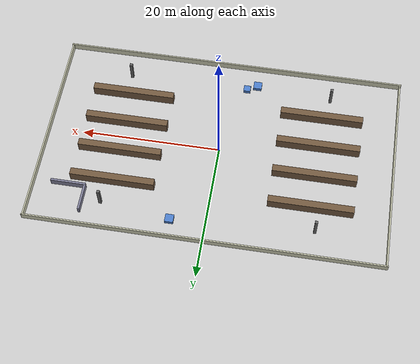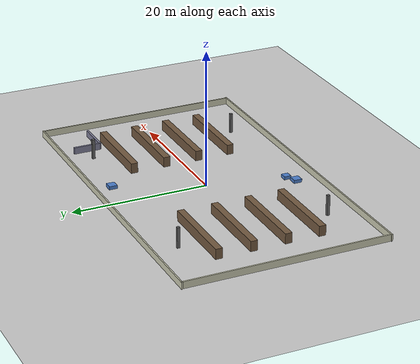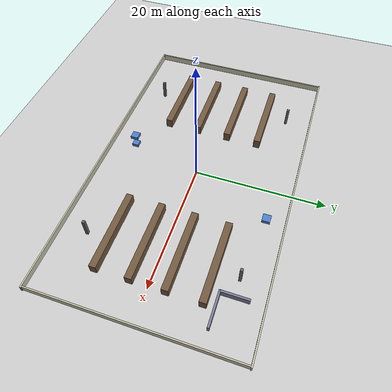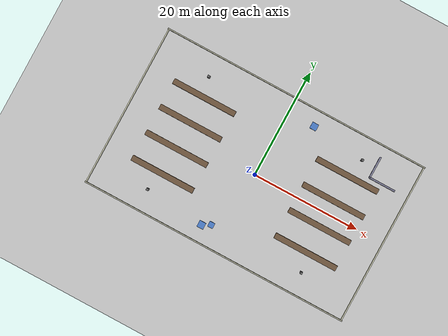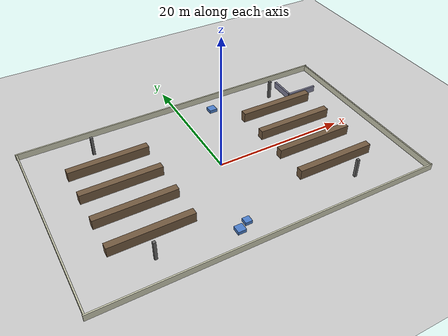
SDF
<?xml version="1.0"?>
<sdf version="1.6">
  <world name="warehouse">

    <include><uri>model://sun</uri></include>
    <include><uri>model://ground_plane</uri></include>

    <physics name="default_physics" type="ode">
      <max_step_size>0.005</max_step_size>
      <real_time_factor>1.0</real_time_factor>
    </physics>

    <!-- ═══════════ Outer shell 50m × 30m ═══════════ -->
    <model name="wall_n">
      <pose>0 15.0 0.5 0 0 0</pose>
      <static>true</static>
      <link name="link">
        <collision name="collision"><geometry><box><size>50.4 0.2 1.0</size></box></geometry></collision>
        <visual name="visual"><geometry><box><size>50.4 0.2 1.0</size></box></geometry>
          <material><ambient>0.8 0.8 0.7 1</ambient><diffuse>0.8 0.8 0.7 1</diffuse></material>
        </visual>
      </link>
    </model>
    <model name="wall_s">
      <pose>0 -15.0 0.5 0 0 0</pose>
      <static>true</static>
      <link name="link">
        <collision name="collision"><geometry><box><size>50.4 0.2 1.0</size></box></geometry></collision>
        <visual name="visual"><geometry><box><size>50.4 0.2 1.0</size></box></geometry>
          <material><ambient>0.8 0.8 0.7 1</ambient><diffuse>0.8 0.8 0.7 1</diffuse></material>
        </visual>
      </link>
    </model>
    <model name="wall_e">
      <pose>25.0 0 0.5 0 0 0</pose>
      <static>true</static>
      <link name="link">
        <collision name="collision"><geometry><box><size>0.2 30.0 1.0</size></box></geometry></collision>
        <visual name="visual"><geometry><box><size>0.2 30.0 1.0</size></box></geometry>
          <material><ambient>0.8 0.8 0.7 1</ambient><diffuse>0.8 0.8 0.7 1</diffuse></material>
        </visual>
      </link>
    </model>
    <model name="wall_w">
      <pose>-25.0 0 0.5 0 0 0</pose>
      <static>true</static>
      <link name="link">
        <collision name="collision"><geometry><box><size>0.2 30.0 1.0</size></box></geometry></collision>
        <visual name="visual"><geometry><box><size>0.2 30.0 1.0</size></box></geometry>
          <material><ambient>0.8 0.8 0.7 1</ambient><diffuse>0.8 0.8 0.7 1</diffuse></material>
        </visual>
      </link>
    </model>

    <!-- ═══════════ Shelving rows (identical, symmetric → landmark aliasing) ═══════════ -->
    <!-- 4 rows × 2 segments; each segment 12m × 1m × 1.5m -->
    <model name="shelf_a1">
      <pose>-14.0 -7.5 0.75 0 0 0</pose>
      <static>true</static>
      <link name="link">
        <collision name="collision"><geometry><box><size>12.0 1.0 1.5</size></box></geometry></collision>
        <visual name="visual"><geometry><box><size>12.0 1.0 1.5</size></box></geometry>
          <material><ambient>0.45 0.35 0.25 1</ambient><diffuse>0.45 0.35 0.25 1</diffuse></material>
        </visual>
      </link>
    </model>
    <model name="shelf_a2">
      <pose>14.0 -7.5 0.75 0 0 0</pose>
      <static>true</static>
      <link name="link">
        <collision name="collision"><geometry><box><size>12.0 1.0 1.5</size></box></geometry></collision>
        <visual name="visual"><geometry><box><size>12.0 1.0 1.5</size></box></geometry>
          <material><ambient>0.45 0.35 0.25 1</ambient><diffuse>0.45 0.35 0.25 1</diffuse></material>
        </visual>
      </link>
    </model>
    <model name="shelf_b1">
      <pose>-14.0 -2.5 0.75 0 0 0</pose>
      <static>true</static>
      <link name="link">
        <collision name="collision"><geometry><box><size>12.0 1.0 1.5</size></box></geometry></collision>
        <visual name="visual"><geometry><box><size>12.0 1.0 1.5</size></box></geometry>
          <material><ambient>0.45 0.35 0.25 1</ambient><diffuse>0.45 0.35 0.25 1</diffuse></material>
        </visual>
      </link>
    </model>
    <model name="shelf_b2">
      <pose>14.0 -2.5 0.75 0 0 0</pose>
      <static>true</static>
      <link name="link">
        <collision name="collision"><geometry><box><size>12.0 1.0 1.5</size></box></geometry></collision>
        <visual name="visual"><geometry><box><size>12.0 1.0 1.5</size></box></geometry>
          <material><ambient>0.45 0.35 0.25 1</ambient><diffuse>0.45 0.35 0.25 1</diffuse></material>
        </visual>
      </link>
    </model>
    <model name="shelf_c1">
      <pose>-14.0 2.5 0.75 0 0 0</pose>
      <static>true</static>
      <link name="link">
        <collision name="collision"><geometry><box><size>12.0 1.0 1.5</size></box></geometry></collision>
        <visual name="visual"><geometry><box><size>12.0 1.0 1.5</size></box></geometry>
          <material><ambient>0.45 0.35 0.25 1</ambient><diffuse>0.45 0.35 0.25 1</diffuse></material>
        </visual>
      </link>
    </model>
    <model name="shelf_c2">
      <pose>14.0 2.5 0.75 0 0 0</pose>
      <static>true</static>
      <link name="link">
        <collision name="collision"><geometry><box><size>12.0 1.0 1.5</size></box></geometry></collision>
        <visual name="visual"><geometry><box><size>12.0 1.0 1.5</size></box></geometry>
          <material><ambient>0.45 0.35 0.25 1</ambient><diffuse>0.45 0.35 0.25 1</diffuse></material>
        </visual>
      </link>
    </model>
    <model name="shelf_d1">
      <pose>-14.0 7.5 0.75 0 0 0</pose>
      <static>true</static>
      <link name="link">
        <collision name="collision"><geometry><box><size>12.0 1.0 1.5</size></box></geometry></collision>
        <visual name="visual"><geometry><box><size>12.0 1.0 1.5</size></box></geometry>
          <material><ambient>0.45 0.35 0.25 1</ambient><diffuse>0.45 0.35 0.25 1</diffuse></material>
        </visual>
      </link>
    </model>
    <model name="shelf_d2">
      <pose>14.0 7.5 0.75 0 0 0</pose>
      <static>true</static>
      <link name="link">
        <collision name="collision"><geometry><box><size>12.0 1.0 1.5</size></box></geometry></collision>
        <visual name="visual"><geometry><box><size>12.0 1.0 1.5</size></box></geometry>
          <material><ambient>0.45 0.35 0.25 1</ambient><diffuse>0.45 0.35 0.25 1</diffuse></material>
        </visual>
      </link>
    </model>

    <!-- ═══════════ Structural pillars (tall, sparse) ═══════════ -->
    <model name="pillar_1">
      <pose>-15.0 -11.0 1.5 0 0 0</pose>
      <static>true</static>
      <link name="link">
        <collision name="collision"><geometry><box><size>0.4 0.4 3.0</size></box></geometry></collision>
        <visual name="visual"><geometry><box><size>0.4 0.4 3.0</size></box></geometry>
          <material><ambient>0.4 0.4 0.4 1</ambient><diffuse>0.4 0.4 0.4 1</diffuse></material>
        </visual>
      </link>
    </model>
    <model name="pillar_2">
      <pose>15.0 -11.0 1.5 0 0 0</pose>
      <static>true</static>
      <link name="link">
        <collision name="collision"><geometry><box><size>0.4 0.4 3.0</size></box></geometry></collision>
        <visual name="visual"><geometry><box><size>0.4 0.4 3.0</size></box></geometry>
          <material><ambient>0.4 0.4 0.4 1</ambient><diffuse>0.4 0.4 0.4 1</diffuse></material>
        </visual>
      </link>
    </model>
    <model name="pillar_3">
      <pose>-15.0 11.0 1.5 0 0 0</pose>
      <static>true</static>
      <link name="link">
        <collision name="collision"><geometry><box><size>0.4 0.4 3.0</size></box></geometry></collision>
        <visual name="visual"><geometry><box><size>0.4 0.4 3.0</size></box></geometry>
          <material><ambient>0.4 0.4 0.4 1</ambient><diffuse>0.4 0.4 0.4 1</diffuse></material>
        </visual>
      </link>
    </model>
    <model name="pillar_4">
      <pose>15.0 11.0 1.5 0 0 0</pose>
      <static>true</static>
      <link name="link">
        <collision name="collision"><geometry><box><size>0.4 0.4 3.0</size></box></geometry></collision>
        <visual name="visual"><geometry><box><size>0.4 0.4 3.0</size></box></geometry>
          <material><ambient>0.4 0.4 0.4 1</ambient><diffuse>0.4 0.4 0.4 1</diffuse></material>
        </visual>
      </link>
    </model>

    <!-- ═══════════ NE loading dock: L-wall occlusion (goal behind it) ═══════════ -->
    <model name="dock_wall_a">
      <pose>20.0 9.0 0.5 0 0 0</pose>
      <static>true</static>
      <link name="link">
        <collision name="collision"><geometry><box><size>5.0 0.3 1.0</size></box></geometry></collision>
        <visual name="visual"><geometry><box><size>5.0 0.3 1.0</size></box></geometry>
          <material><ambient>0.5 0.5 0.6 1</ambient><diffuse>0.5 0.5 0.6 1</diffuse></material>
        </visual>
      </link>
    </model>
    <model name="dock_wall_b">
      <pose>17.6 11.0 0.5 0 0 0</pose>
      <static>true</static>
      <link name="link">
        <collision name="collision"><geometry><box><size>0.3 4.0 1.0</size></box></geometry></collision>
        <visual name="visual"><geometry><box><size>0.3 4.0 1.0</size></box></geometry>
          <material><ambient>0.5 0.5 0.6 1</ambient><diffuse>0.5 0.5 0.6 1</diffuse></material>
        </visual>
      </link>
    </model>

    <!-- ═══════════ Pallet clusters (low, visible to LiDAR plane) ═══════════ -->
    <model name="pallet_1">
      <pose>-4.0 -12.0 0.25 0 0 0</pose>
      <static>true</static>
      <link name="link">
        <collision name="collision"><geometry><box><size>1.2 1.2 0.5</size></box></geometry></collision>
        <visual name="visual"><geometry><box><size>1.2 1.2 0.5</size></box></geometry>
          <material><ambient>0.3 0.5 0.8 1</ambient><diffuse>0.3 0.5 0.8 1</diffuse></material>
        </visual>
      </link>
    </model>
    <model name="pallet_2">
      <pose>-2.5 -11.2 0.25 0 0 0</pose>
      <static>true</static>
      <link name="link">
        <collision name="collision"><geometry><box><size>1.0 1.0 0.5</size></box></geometry></collision>
        <visual name="visual"><geometry><box><size>1.0 1.0 0.5</size></box></geometry>
          <material><ambient>0.3 0.5 0.8 1</ambient><diffuse>0.3 0.5 0.8 1</diffuse></material>
        </visual>
      </link>
    </model>
    <model name="pallet_3">
      <pose>5.0 12.2 0.25 0 0 0</pose>
      <static>true</static>
      <link name="link">
        <collision name="collision"><geometry><box><size>1.2 1.2 0.5</size></box></geometry></collision>
        <visual name="visual"><geometry><box><size>1.2 1.2 0.5</size></box></geometry>
          <material><ambient>0.3 0.5 0.8 1</ambient><diffuse>0.3 0.5 0.8 1</diffuse></material>
        </visual>
      </link>
    </model>

  </world>
</sdf>
